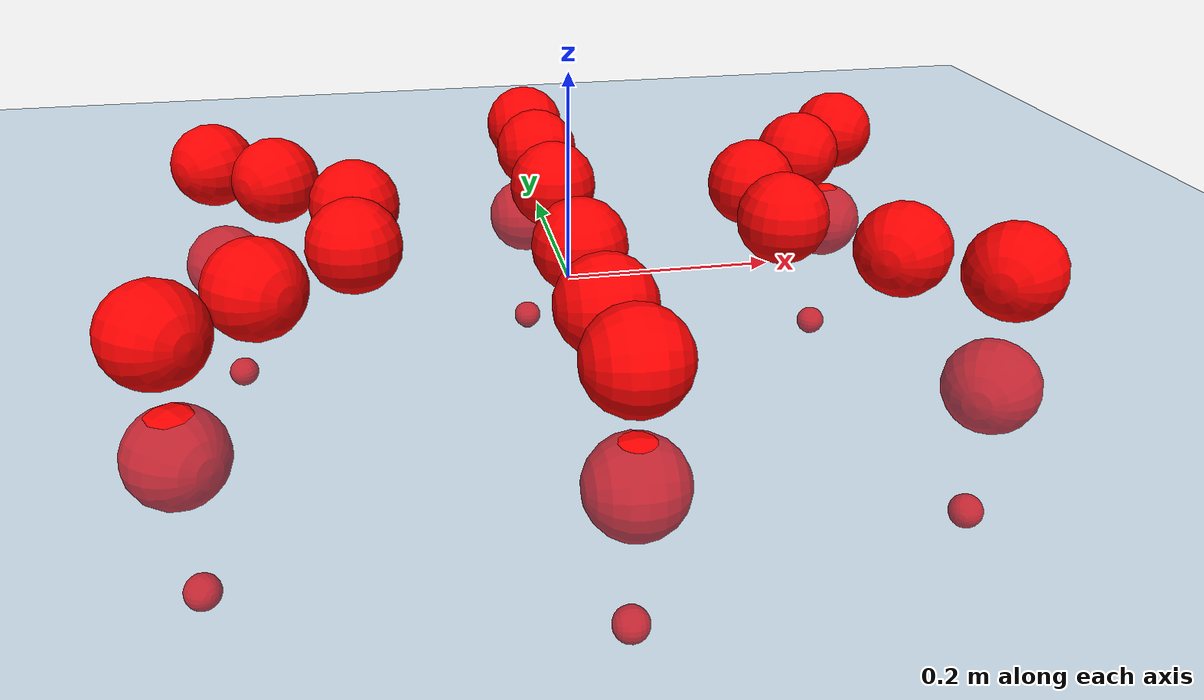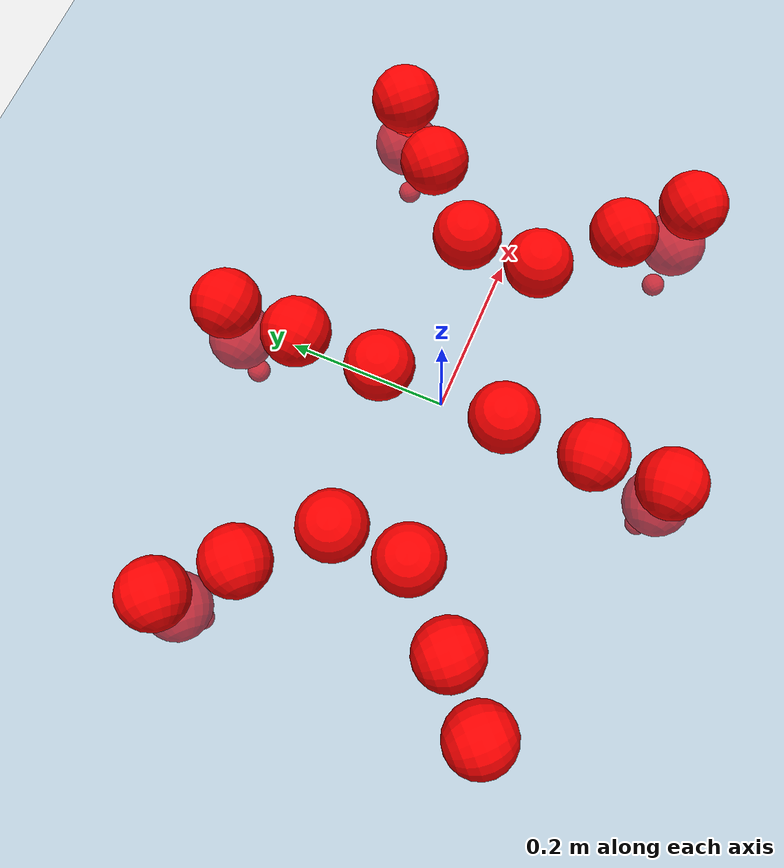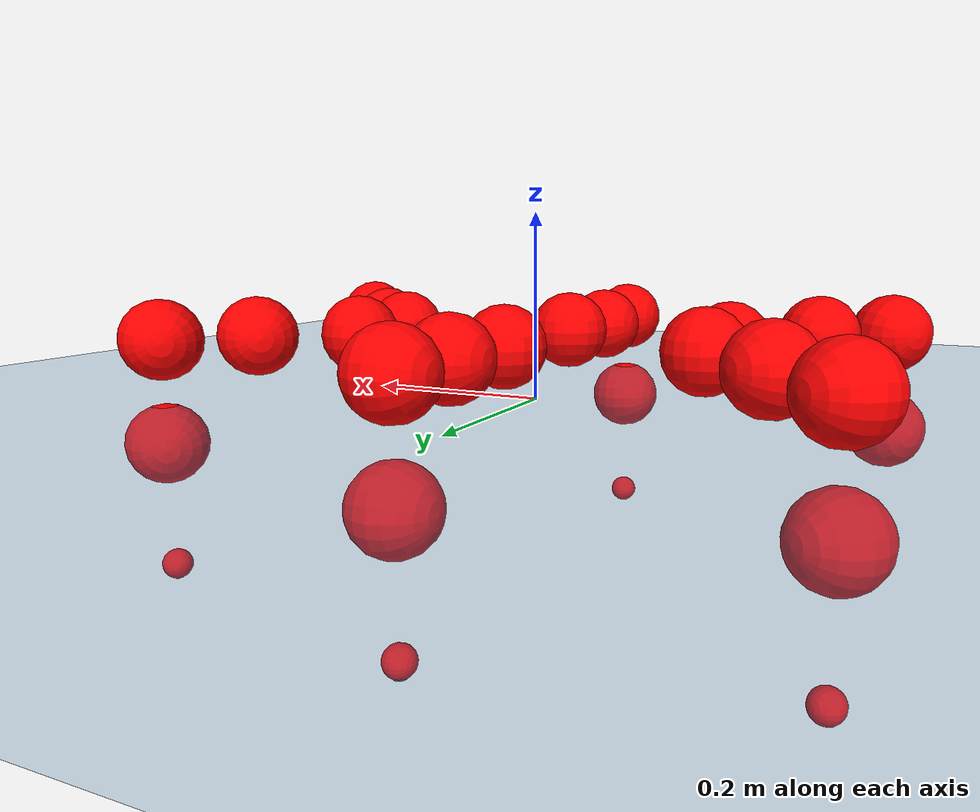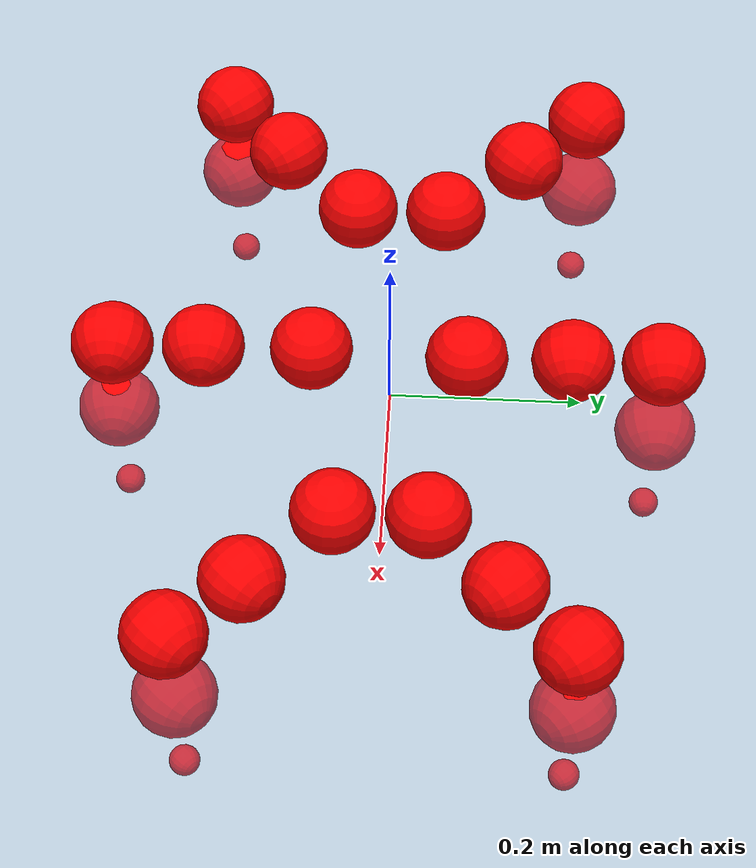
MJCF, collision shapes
<mujoco model="Golem">
  <compiler angle="radian" assetdir="assets" balanceinertia="true" inertiafromgeom="false"/>

  <option timestep="0.005" density="1.2" viscosity="2e-05"/>

  <size nkey="1"/>

  <visual>
    <quality shadowsize="8192"/>
    <map shadowclip="0.5"/>
  </visual>

  <default>
    <default class="/">
      <joint armature="0.01" damping="0.01" frictionloss="0.01"/>
      <geom contype="0" conaffinity="0" group="1" solref="-1000 -80"/>
      <site size="0.01 0.005 0.005" group="5"/>
      <general forcelimited="true" biastype="affine" gainprm="25" biasprm="0 -25 -0.5"/>
      <default class="visual">
        <geom type="mesh" group="2"/>
      </default>
      <default class="collision">
        <geom group="3"/>
      </default>
      <default class="foot">
        <geom size="0.01 0 0" condim="6" group="4" priority="1" solimp="0.015 1 0.01"/>
      </default>
      <default class="reward_collision_sphere">
        <geom group="5" rgba="1 0 0 1"/>
      </default>
    </default>
  </default>

  <asset>
    <texture type="skybox" colorspace="auto" name="//unnamed_texture_0" builtin="gradient" rgb1="0.95 0.95 0.95" rgb2="0.95 0.95 0.95" width="100" height="600"/>
    <texture type="2d" colorspace="auto" name="texplane" builtin="checker" rgb1="0.345 0.575 0.748" rgb2="0.345 0.575 0.748" markrgb="1 1 1" width="512" height="512"/>
    <material name="MatPlane" class="/" texture="texplane" texuniform="true" texrepeat="2 2" specular="0.9"/>
    <mesh name="body" class="/" file="body.stl" scale="0.001 0.001 0.001"/>
    <mesh name="coxa" class="/" file="coxa.stl" scale="0.001 0.001 0.001"/>
    <mesh name="femur" class="/" file="femur.stl" scale="0.001 0.001 0.001"/>
    <mesh name="tibia" class="/" file="tibia.stl" scale="0.001 0.001 0.001"/>
    <mesh name="tarsus" class="/" file="tarsus.stl" scale="0.001 0.001 0.001"/>
  </asset>

  <worldbody>
    <geom name="floor" class="/" size="100 100 0.125" type="plane" group="0" material="MatPlane"/>
    <light name="toplight_shadow" class="/" pos="0 0 5" dir="0.0990148 0.0990148 -0.990148" type="directional" ambient="0.04 0.04 0.04" diffuse="0.55 0.55 0.55" specular="0.12 0.12 0.12"/>
    <light name="toplight_fill" class="/" pos="0 0 5" dir="0.0990148 0.0990148 -0.990148" type="directional" castshadow="false" ambient="0.04 0.04 0.04" diffuse="0.3 0.3 0.3" specular="0.08 0.08 0.08"/>
    <body name="trunk" pos="-0.0017881 -6.39608e-06 -0.000750031" quat="1 -6.64366e-05 -0.000323853 0.000343606">
      <inertial pos="0.00125431 0.000638994 -0.00475243" quat="0.999909 0.0127889 0.00248616 0.0036311" mass="4.50912" diaginertia="0.0321818 0.00547884 0.0137242"/>
      <joint name="//unnamed_joint_0" type="free"/>
      <geom name="//unnamed_geom_1" class="/" pos="0 0 0.0682962" quat="1 0 0 0" type="mesh" rgba="0.9 0.9 0.9 1" mesh="body"/>
      <site name="imu" class="/" pos="0.165897 0.00290204 0.104247" size="0.010723"/>
      <camera name="track" class="/" pos="0 -1.77642 0" quat="0.707107 0.707107 0 0" mode="trackcom"/>
      <camera name="ego_camera" class="/" pos="0.164004 0 0.106713" quat="-0.5 -0.5 0.5 0.5"/>
      <body name="coxa_RR" pos="-0.224431 -0.0713794 0.0680336" quat="0.382895 0.000160936 0.000117491 -0.923792">
        <inertial pos="0.000408675 -0.000220305 0.000233711" quat="0.999971 -0.00116499 0.00537313 -0.00530697" mass="0.240318" diaginertia="0.0320965 0.00534259 0.0135019"/>
        <joint name="coxa_joint_RR" class="/" pos="0 0 0" axis="-0.000856856 -0.00182269 -0.999998" range="-3.1424 3.19326" armature="0.0104858" damping="0.0132555" frictionloss="0.0101348"/>
        <geom name="//unnamed_geom_2" class="/" type="mesh" rgba="0.2 0.2 0.2 1" mesh="coxa"/>
        <geom name="//unnamed_geom_3" class="reward_collision_sphere" size="0.0428921" pos="-0.0378472 0 0"/>
        <body name="femur_RR" pos="0.0747941 0.00221562 0.00279579" quat="0.500024 -0.499603 0.500096 0.500277">
          <inertial pos="6.5103e-05 0.00265694 0.0026235" quat="0.999986 -0.00496851 -0.0012128 0.00147023" mass="0.246569" diaginertia="0.0330177 0.00552857 0.0144031"/>
          <joint name="femur_joint_RR" class="/" pos="0 0 0" axis="-0.00202504 -0.00280065 -0.999994" range="-3.16053 3.13591" armature="0.01036" damping="0.0153555" frictionloss="0.0121346"/>
          <geom name="//unnamed_geom_4" class="/" type="mesh" rgba="0.9 0.9 0.9 1" mesh="femur"/>
          <geom name="//unnamed_geom_5" class="reward_collision_sphere" size="0.0428921"/>
          <body name="tibia_RR" pos="0.00074095 -0.0940145 -0.00243144" quat="-1.04742e-06 1 -2.28458e-06 -1.33714e-06">
            <inertial pos="0.000877823 -0.00220868 0.000908788" quat="0.999999 6.95189e-05 0.00140432 0.00026769" mass="0.246278" diaginertia="0.0319258 0.00553746 0.0137758"/>
            <joint name="tibia_joint_RR" class="/" pos="0 0 0" axis="4.38845e-06 -0.000391268 1" range="-3.13979 3.13552" armature="0.0104634" damping="0.0203691" frictionloss="0.00992747"/>
            <geom name="//unnamed_geom_6" class="/" type="mesh" rgba="0.2 0.2 0.2 1" mesh="tibia"/>
            <geom name="//unnamed_geom_7" class="reward_collision_sphere" size="0.0428921"/>
            <body name="tarsus_RR" pos="0.107994 0.000453616 0.00014072" quat="1 -9.69586e-05 0.000127726 2.84715e-05">
              <inertial pos="0.0747101 -0.000629627 -2.43226e-05" quat="0.500006 0.496635 0.4995 0.503833" mass="0.25388" diaginertia="0.033132 0.00561312 0.0137106"/>
              <joint name="tarsus_joint_RR" class="/" pos="0 0 0" axis="0.000606375 -0.000266978 1" range="-3.19287 3.19031" armature="0.010802" damping="0.00420836" frictionloss="0.0110157"/>
              <geom name="//unnamed_geom_8" class="/" type="mesh" rgba="0.9 0.9 0.9 1" mesh="tarsus"/>
              <geom name="foot_1" class="foot" size="0.0114178" pos="0.141296 0 0" quat="0 -0.707107 0 0.707107"/>
              <geom name="//unnamed_geom_10" class="reward_collision_sphere" size="0.0428921"/>
              <geom name="//unnamed_geom_11" class="reward_collision_sphere" size="0.0160845" pos="0.135619 0 0"/>
              <site name="foot_1" class="foot" pos="0.141296 0 0" quat="0 -0.707107 0 0.707107" size="0.010723"/>
            </body>
          </body>
        </body>
      </body>
      <body name="coxa_RM" pos="-0.00282567 -0.118954 0.0691093" quat="0.707177 8.19335e-05 -0.000110703 -0.707036">
        <inertial pos="0.00014657 -0.00114814 0.00104324" quat="0.999909 -0.00432975 -0.00772866 -0.0101504" mass="0.251412" diaginertia="0.032541 0.00552416 0.0141652"/>
        <joint name="coxa_joint_RM" class="/" pos="0 0 0" axis="0.00121616 0.00259204 -0.999996" range="-3.11865 3.12042" armature="0.0105792" damping="0.00639769" frictionloss="0.0110542"/>
        <geom name="//unnamed_geom_12" class="/" type="mesh" rgba="0.2 0.2 0.2 1" mesh="coxa"/>
        <geom name="//unnamed_geom_13" class="reward_collision_sphere" size="0.0428921" pos="-0.0378472 0 0"/>
        <body name="femur_RM" pos="0.0741461 -0.000509843 -0.00332972" quat="0.499306 -0.500837 0.500461 0.499393">
          <inertial pos="-0.00273285 -0.00120691 -0.00263515" quat="0.999998 -0.000380849 -0.000645369 -0.00198241" mass="0.254773" diaginertia="0.0322433 0.00554407 0.0139259"/>
          <joint name="femur_joint_RM" class="/" pos="0 0 0" axis="-0.00431333 -0.00229358 -0.999988" range="-3.1601 3.19324" armature="0.0106093" damping="0.0141911" frictionloss="0.00930443"/>
          <geom name="//unnamed_geom_14" class="/" type="mesh" rgba="0.9 0.9 0.9 1" mesh="femur"/>
          <geom name="//unnamed_geom_15" class="reward_collision_sphere" size="0.0428921"/>
          <body name="tibia_RM" pos="-0.00183262 -0.0941595 0.00242232" quat="0.000188838 1 -0.000160776 -0.000167911">
            <inertial pos="-0.00040515 -0.00126267 0.000147108" quat="1 0.000197807 -0.000393107 -0.000529471" mass="0.246162" diaginertia="0.0325988 0.00559262 0.013695"/>
            <joint name="tibia_joint_RM" class="/" pos="0 0 0" axis="-0.00788575 0.0102451 0.999916" stiffness="0.00083023" range="-3.14539 3.08737" armature="0.0113061" damping="0" frictionloss="0.0108676"/>
            <geom name="//unnamed_geom_16" class="/" type="mesh" rgba="0.2 0.2 0.2 1" mesh="tibia"/>
            <geom name="//unnamed_geom_17" class="reward_collision_sphere" size="0.0428921"/>
            <body name="tarsus_RM" pos="0.107606 0.00219212 -0.00240982" quat="1 0.000264414 -0.000345288 0.000138709">
              <inertial pos="0.0768684 0.000716766 0.00206895" quat="0.503152 0.491989 0.506416 0.498325" mass="0.245501" diaginertia="0.0323125 0.00549479 0.0132826"/>
              <joint name="tarsus_joint_RM" class="/" pos="0 0 0" axis="0.00181835 -0.00098397 0.999998" range="-3.19173 3.08442" armature="0.0107014" damping="0.00535255" frictionloss="0.0112652"/>
              <geom name="//unnamed_geom_18" class="/" type="mesh" rgba="0.9 0.9 0.9 1" mesh="tarsus"/>
              <geom name="foot_2" class="foot" size="0.0105368" pos="0.141296 0 0" quat="0 -0.707107 0 0.707107"/>
              <geom name="//unnamed_geom_20" class="reward_collision_sphere" size="0.0428921"/>
              <geom name="//unnamed_geom_21" class="reward_collision_sphere" size="0.0160845" pos="0.135619 0 0"/>
              <site name="foot_2" class="foot" pos="0.141296 0 0" quat="0 -0.707107 0 0.707107" size="0.010723"/>
            </body>
          </body>
        </body>
      </body>
      <body name="coxa_RF" pos="0.223246 -0.0732094 0.066681" quat="0.923781 0.000235939 -7.24274e-05 -0.38292">
        <inertial pos="-8.89128e-05 -0.0025384 -0.00079257" quat="0.999991 0.00239369 0.00320903 0.00121319" mass="0.253034" diaginertia="0.0326613 0.00553299 0.0138483"/>
        <joint name="coxa_joint_RF" class="/" pos="0 0 0" axis="0.000898741 0.00248786 -0.999997" range="-3.13811 3.17554" armature="0.0109205" damping="0" frictionloss="0.010735"/>
        <geom name="//unnamed_geom_22" class="/" type="mesh" rgba="0.2 0.2 0.2 1" mesh="coxa"/>
        <geom name="//unnamed_geom_23" class="reward_collision_sphere" size="0.0428921" pos="-0.0378472 0 0"/>
        <body name="femur_RF" pos="0.0772308 -0.000728509 -0.00267974" quat="0.500015 -0.499965 0.500052 0.499969">
          <inertial pos="-0.000810766 -0.000164537 0.0024435" quat="0.999989 0.000371933 0.000562505 -0.00456135" mass="0.242847" diaginertia="0.0321855 0.00540677 0.0139099"/>
          <joint name="femur_joint_RF" class="/" pos="0 0 0" axis="-0.00075892 -0.00181952 -0.999998" range="-3.08593 3.11761" armature="0.0104754" damping="0.011594" frictionloss="0.00959789"/>
          <geom name="//unnamed_geom_24" class="/" type="mesh" rgba="0.9 0.9 0.9 1" mesh="femur"/>
          <geom name="//unnamed_geom_25" class="reward_collision_sphere" size="0.0428921"/>
          <body name="tibia_RF" pos="-0.00318942 -0.0950448 4.20072e-05" quat="-0.00016534 1 -7.83573e-05 0.000103825">
            <inertial pos="0.00199843 -0.000455588 -2.76812e-06" quat="0.999909 -0.00368457 0.0113793 -0.00618488" mass="0.251414" diaginertia="0.0313008 0.00545266 0.0139369"/>
            <joint name="tibia_joint_RF" class="/" pos="0 0 0" axis="0.00468232 0.00832485 0.999954" range="-3.1398 3.13835" armature="0.0101765" damping="0.0050147" frictionloss="0.0107163"/>
            <geom name="//unnamed_geom_26" class="/" type="mesh" rgba="0.2 0.2 0.2 1" mesh="tibia"/>
            <geom name="//unnamed_geom_27" class="reward_collision_sphere" size="0.0428921"/>
            <body name="tarsus_RF" pos="0.112379 -0.000947434 -0.00221399" quat="1 -6.5048e-05 -0.000165298 -0.000514404">
              <inertial pos="0.076142 -0.00250943 -0.000288944" quat="0.501662 0.501624 0.497849 0.498854" mass="0.237914" diaginertia="0.0317759 0.00535355 0.0139421"/>
              <joint name="tarsus_joint_RF" class="/" pos="0 0 0" axis="-0.00808281 0.0115558 0.999901" range="-3.18416 3.13693" armature="0.0107787" damping="0.0194047" frictionloss="0.0111643"/>
              <geom name="//unnamed_geom_28" class="/" type="mesh" rgba="0.9 0.9 0.9 1" mesh="tarsus"/>
              <geom name="foot_3" class="foot" size="0.0103133" pos="0.141296 0 0" quat="0 -0.707107 0 0.707107"/>
              <geom name="//unnamed_geom_30" class="reward_collision_sphere" size="0.0428921"/>
              <geom name="//unnamed_geom_31" class="reward_collision_sphere" size="0.0160845" pos="0.135619 0 0"/>
              <site name="foot_3" class="foot" pos="0.141296 0 0" quat="0 -0.707107 0 0.707107" size="0.010723"/>
            </body>
          </body>
        </body>
      </body>
      <body name="coxa_LR" pos="-0.223488 0.0767946 0.0703834" quat="0.38265 -1.70318e-05 -8.38287e-05 0.923893">
        <inertial pos="0.000975873 0.00064567 0.00294227" quat="0.999999 -0.000571047 -0.000719674 0.000421149" mass="0.24779" diaginertia="0.0316445 0.00548288 0.0132816"/>
        <joint name="coxa_joint_LR" class="/" pos="0 0 0" axis="-0.00274392 0.00105527 -0.999996" range="-3.14814 3.1271" armature="0.0107224" damping="0" frictionloss="0.00927135"/>
        <geom name="//unnamed_geom_32" class="/" type="mesh" rgba="0.2 0.2 0.2 1" mesh="coxa"/>
        <geom name="//unnamed_geom_33" class="reward_collision_sphere" size="0.0428921" pos="-0.0378472 0 0"/>
        <body name="femur_LR" pos="0.0759913 -0.00335134 -0.00030405" quat="0.49985 -0.499668 0.500283 0.500199">
          <inertial pos="0.00258888 -0.000395624 0.00191399" quat="0.999998 -0.00152409 0.000511722 -0.00154385" mass="0.237632" diaginertia="0.0317383 0.00548946 0.0138592"/>
          <joint name="femur_joint_LR" class="/" pos="0 0 0" axis="0.00252695 0.00110778 0.999996" range="-3.19351 3.08528" armature="0.00929884" damping="0" frictionloss="0.0109459"/>
          <geom name="//unnamed_geom_34" class="/" type="mesh" rgba="0.9 0.9 0.9 1" mesh="femur"/>
          <geom name="//unnamed_geom_35" class="reward_collision_sphere" size="0.0428921"/>
          <body name="tibia_LR" pos="0.00285989 -0.0968944 -0.000535477" quat="0.000217303 1 0.000233695 -0.000145744">
            <inertial pos="0.000614874 -0.00239855 0.000314356" quat="0.999999 -0.00138255 0.000351263 0.000825727" mass="0.251945" diaginertia="0.031318 0.00566198 0.0134837"/>
            <joint name="tibia_joint_LR" class="/" pos="0 0 0" axis="-0.0139042 0.000482616 -0.999903" range="-3.15646 3.08864" armature="0.0110056" damping="0.00289908" frictionloss="0.0107466"/>
            <geom name="//unnamed_geom_36" class="/" type="mesh" rgba="0.2 0.2 0.2 1" mesh="tibia"/>
            <geom name="//unnamed_geom_37" class="reward_collision_sphere" size="0.0428921"/>
            <body name="tarsus_LR" pos="0.114326 -0.000137718 -0.00144618" quat="0.999999 0.000694545 0.000634754 -0.00101336">
              <inertial pos="0.0739715 -0.00204949 0.000928951" quat="0.500107 0.499899 0.499978 0.500016" mass="0.248498" diaginertia="0.0320589 0.00536389 0.0140758"/>
              <joint name="tarsus_joint_LR" class="/" pos="0 0 0" axis="-1.68947e-05 1.82606e-05 -1" range="-3.14945 3.14868" armature="0.0107293" damping="0.0273378" frictionloss="0.0121389"/>
              <geom name="//unnamed_geom_38" class="/" type="mesh" rgba="0.9 0.9 0.9 1" mesh="tarsus"/>
              <geom name="foot_4" class="foot" size="0.0107676" pos="0.141296 0 0" quat="0.707107 0 -0.707107 0"/>
              <geom name="//unnamed_geom_40" class="reward_collision_sphere" size="0.0428921"/>
              <geom name="//unnamed_geom_41" class="reward_collision_sphere" size="0.0160845" pos="0.135619 0 0"/>
              <site name="foot_4" class="foot" pos="0.141296 0 0" quat="0.707107 0 -0.707107 0" size="0.010723"/>
            </body>
          </body>
        </body>
      </body>
      <body name="coxa_LM" pos="-0.000198352 0.116888 0.0676881" quat="0.706927 5.373e-05 0.000489841 0.707286">
        <inertial pos="0.00289235 3.97275e-05 0.000107414" quat="0.999997 -0.00163409 0.000767779 -0.00134564" mass="0.238385" diaginertia="0.0319215 0.00535462 0.0135573"/>
        <joint name="coxa_joint_LM" class="/" pos="0 0 0" axis="0.0006713 0.00150828 -0.999999" range="-3.14944 3.13725" armature="0.0110629" damping="0" frictionloss="0.0100047"/>
        <geom name="//unnamed_geom_42" class="/" type="mesh" rgba="0.2 0.2 0.2 1" mesh="coxa"/>
        <geom name="//unnamed_geom_43" class="reward_collision_sphere" size="0.0428921" pos="-0.0378472 0 0"/>
        <body name="femur_LM" pos="0.0710114 0.000210936 0.00148847" quat="0.499929 -0.500076 0.499918 0.500077">
          <inertial pos="0.00146907 -0.000618169 -0.000964905" quat="0.999994 0.000495299 0.00307914 0.00142302" mass="0.253708" diaginertia="0.0316402 0.00565706 0.0146096"/>
          <joint name="femur_joint_LM" class="/" pos="0 0 0" axis="-0.000757491 -0.0153621 0.999882" range="-3.0862 3.1306" armature="0.0113929" damping="0.00223885" frictionloss="0.0107499"/>
          <geom name="//unnamed_geom_44" class="/" type="mesh" rgba="0.9 0.9 0.9 1" mesh="femur"/>
          <geom name="//unnamed_geom_45" class="reward_collision_sphere" size="0.0428921"/>
          <body name="tibia_LM" pos="-0.000457284 -0.0927516 -0.000212257" quat="-0.000116497 1 7.9228e-05 -9.8473e-05">
            <inertial pos="-0.00267244 0.000325392 -5.69031e-05" quat="0.999994 0.00258075 0.000206898 -0.00214575" mass="0.244035" diaginertia="0.0321498 0.00557917 0.0140739"/>
            <joint name="tibia_joint_LM" class="/" pos="0 0 0" axis="0.000294367 -3.41734e-05 -1" stiffness="0.00669602" range="-3.15823 3.13231" armature="0.00971042" damping="0.00622447" frictionloss="0.00936042"/>
            <geom name="//unnamed_geom_46" class="/" type="mesh" rgba="0.2 0.2 0.2 1" mesh="tibia"/>
            <geom name="//unnamed_geom_47" class="reward_collision_sphere" size="0.0428921"/>
            <body name="tarsus_LM" pos="0.114393 0.00161812 -3.66505e-05" quat="1 -2.47352e-06 0.00028099 2.80617e-05">
              <inertial pos="0.0735589 6.893e-05 -0.00143538" quat="0.48965 0.50634 0.503385 0.500466" mass="0.243704" diaginertia="0.0310833 0.00552789 0.0135012"/>
              <joint name="tarsus_joint_LM" class="/" pos="0 0 0" axis="-0.00505972 -0.00785924 -0.999956" stiffness="0.00254702" range="-3.09629 3.13878" armature="0.0103749" damping="0.0148884" frictionloss="0.0106159"/>
              <geom name="//unnamed_geom_48" class="/" type="mesh" rgba="0.9 0.9 0.9 1" mesh="tarsus"/>
              <geom name="foot_5" class="foot" size="0.0118179" pos="0.141296 0 0" quat="0.707107 0 -0.707107 0"/>
              <geom name="//unnamed_geom_50" class="reward_collision_sphere" size="0.0428921"/>
              <geom name="//unnamed_geom_51" class="reward_collision_sphere" size="0.0160845" pos="0.135619 0 0"/>
              <site name="foot_5" class="foot" pos="0.141296 0 0" quat="0.707107 0 -0.707107 0" size="0.010723"/>
            </body>
          </body>
        </body>
      </body>
      <body name="coxa_LF" pos="0.22374 0.0745992 0.0678034" quat="0.923884 1.59412e-05 3.10156e-05 0.382673">
        <inertial pos="0.000167941 -0.00253521 0.000271053" quat="0.999913 0.00387837 0.0110565 0.00606266" mass="0.251843" diaginertia="0.0327732 0.00578462 0.0144747"/>
        <joint name="coxa_joint_LF" class="/" pos="0 0 0" axis="0.00202311 -0.000852628 -0.999998" range="-3.09785 3.14029" armature="0.0111698" damping="0.01271" frictionloss="0.00940299"/>
        <geom name="//unnamed_geom_52" class="/" type="mesh" rgba="0.2 0.2 0.2 1" mesh="coxa"/>
        <geom name="//unnamed_geom_53" class="reward_collision_sphere" size="0.0428921" pos="-0.0378472 0 0"/>
        <body name="femur_LF" pos="0.0720438 -0.000804166 0.00188623" quat="0.499728 -0.499833 0.50033 0.500109">
          <inertial pos="6.69322e-05 0.00141993 -0.00259185" quat="0.999986 -0.00157404 -0.00424764 -0.00255487" mass="0.250345" diaginertia="0.0322417 0.00563171 0.0136615"/>
          <joint name="femur_joint_LF" class="/" pos="0 0 0" axis="0.00133425 -0.0028628 0.999995" range="-3.11906 3.13812" armature="0.0116256" damping="0.00288769" frictionloss="0.0106892"/>
          <geom name="//unnamed_geom_54" class="/" type="mesh" rgba="0.9 0.9 0.9 1" mesh="femur"/>
          <geom name="//unnamed_geom_55" class="reward_collision_sphere" size="0.0428921"/>
          <body name="tibia_LF" pos="0.000190303 -0.0973658 0.000797882" quat="0.000118678 1 0.000119045 -0.000252965">
            <inertial pos="0.0026371 0.00281629 0.00257313" quat="0.999996 -0.00278902 -0.000856284 -7.52663e-05" mass="0.248423" diaginertia="0.0322516 0.00567264 0.0143933"/>
            <joint name="tibia_joint_LF" class="/" pos="0 0 0" axis="0.00126753 -0.000219204 -0.999999" stiffness="0.00410656" range="-3.10361 3.08497" armature="0.0113006" damping="0.00506646" frictionloss="0.00989186"/>
            <geom name="//unnamed_geom_56" class="/" type="mesh" rgba="0.2 0.2 0.2 1" mesh="tibia"/>
            <geom name="//unnamed_geom_57" class="reward_collision_sphere" size="0.0428921"/>
            <body name="tarsus_LF" pos="0.110145 0.00160788 -0.000834726" quat="1 -1.70533e-05 -3.76611e-06 1.17192e-05">
              <inertial pos="0.074531 0.00108658 0.00262006" quat="0.493171 0.499162 0.509853 0.497664" mass="0.249363" diaginertia="0.0332431 0.00554308 0.0143917"/>
              <joint name="tarsus_joint_LF" class="/" pos="0 0 0" axis="-0.00178799 -0.00174458 -0.999997" stiffness="0.00280451" range="-3.18987 3.08442" armature="0.0113183" damping="0.0160017" frictionloss="0.0112886"/>
              <geom name="//unnamed_geom_58" class="/" type="mesh" rgba="0.9 0.9 0.9 1" mesh="tarsus"/>
              <geom name="foot_6" class="foot" size="0.0112733" pos="0.141296 0 0" quat="0.707107 0 -0.707107 0"/>
              <geom name="//unnamed_geom_60" class="reward_collision_sphere" size="0.0428921"/>
              <geom name="//unnamed_geom_61" class="reward_collision_sphere" size="0.0160845" pos="0.135619 0 0"/>
              <site name="foot_6" class="foot" pos="0.141296 0 0" quat="0.707107 0 -0.707107 0" size="0.010723"/>
            </body>
          </body>
        </body>
      </body>
    </body>
  </worldbody>

  <contact>
    <pair class="/" geom1="floor" geom2="foot_1" name="//unnamed_contact_0"/>
    <pair class="/" geom1="floor" geom2="foot_2" name="//unnamed_contact_1"/>
    <pair class="/" geom1="floor" geom2="foot_3" name="//unnamed_contact_2"/>
    <pair class="/" geom1="floor" geom2="foot_4" name="//unnamed_contact_3"/>
    <pair class="/" geom1="floor" geom2="foot_5" name="//unnamed_contact_4"/>
    <pair class="/" geom1="floor" geom2="foot_6" name="//unnamed_contact_5"/>
  </contact>

  <actuator>
    <general name="coxa_joint_RR" class="/" joint="coxa_joint_RR" forcerange="-8.14119 8.14119" gainprm="27.4225" biasprm="0 -27.4225 -0.568154"/>
    <general name="femur_joint_RR" class="/" joint="femur_joint_RR" forcerange="-7.89544 7.89544" gainprm="27.4225" biasprm="0 -27.4225 -0.568154"/>
    <general name="tibia_joint_RR" class="/" joint="tibia_joint_RR" forcerange="-7.78997 7.78997" gainprm="27.4225" biasprm="0 -27.4225 -0.568154"/>
    <general name="tarsus_joint_RR" class="/" joint="tarsus_joint_RR" forcerange="-7.8103 7.8103" gainprm="27.4225" biasprm="0 -27.4225 -0.568154"/>
    <general name="coxa_joint_RM" class="/" joint="coxa_joint_RM" forcerange="-7.82337 7.82337" gainprm="27.4225" biasprm="0 -27.4225 -0.568154"/>
    <general name="femur_joint_RM" class="/" joint="femur_joint_RM" forcerange="-7.90033 7.90033" gainprm="27.4225" biasprm="0 -27.4225 -0.568154"/>
    <general name="tibia_joint_RM" class="/" joint="tibia_joint_RM" forcerange="-7.78415 7.78415" gainprm="27.4225" biasprm="0 -27.4225 -0.568154"/>
    <general name="tarsus_joint_RM" class="/" joint="tarsus_joint_RM" forcerange="-7.19055 7.19055" gainprm="27.4225" biasprm="0 -27.4225 -0.568154"/>
    <general name="coxa_joint_RF" class="/" joint="coxa_joint_RF" forcerange="-7.78997 7.78997" gainprm="27.4225" biasprm="0 -27.4225 -0.568154"/>
    <general name="femur_joint_RF" class="/" joint="femur_joint_RF" forcerange="-7.79326 7.79326" gainprm="27.4225" biasprm="0 -27.4225 -0.568154"/>
    <general name="tibia_joint_RF" class="/" joint="tibia_joint_RF" forcerange="-7.85892 7.85892" gainprm="27.4225" biasprm="0 -27.4225 -0.568154"/>
    <general name="tarsus_joint_RF" class="/" joint="tarsus_joint_RF" forcerange="-8.1241 8.1241" gainprm="27.4225" biasprm="0 -27.4225 -0.568154"/>
    <general name="coxa_joint_LR" class="/" joint="coxa_joint_LR" forcerange="-7.97787 7.97787" gainprm="27.4225" biasprm="0 -27.4225 -0.568154"/>
    <general name="femur_joint_LR" class="/" joint="femur_joint_LR" forcerange="-7.08231 7.08231" gainprm="27.4225" biasprm="0 -27.4225 -0.568154"/>
    <general name="tibia_joint_LR" class="/" joint="tibia_joint_LR" forcerange="-7.56669 7.56669" gainprm="27.4225" biasprm="0 -27.4225 -0.568154"/>
    <general name="tarsus_joint_LR" class="/" joint="tarsus_joint_LR" forcerange="-7.78997 7.78997" gainprm="27.4225" biasprm="0 -27.4225 -0.568154"/>
    <general name="coxa_joint_LM" class="/" joint="coxa_joint_LM" forcerange="-7.71071 7.71071" gainprm="27.4225" biasprm="0 -27.4225 -0.568154"/>
    <general name="femur_joint_LM" class="/" joint="femur_joint_LM" forcerange="-7.68315 7.68315" gainprm="27.4225" biasprm="0 -27.4225 -0.568154"/>
    <general name="tibia_joint_LM" class="/" joint="tibia_joint_LM" forcerange="-7.85254 7.85254" gainprm="27.4225" biasprm="0 -27.4225 -0.568154"/>
    <general name="tarsus_joint_LM" class="/" joint="tarsus_joint_LM" forcerange="-8.17347 8.17347" gainprm="27.4225" biasprm="0 -27.4225 -0.568154"/>
    <general name="coxa_joint_LF" class="/" joint="coxa_joint_LF" forcerange="-8.04753 8.04753" gainprm="27.4225" biasprm="0 -27.4225 -0.568154"/>
    <general name="femur_joint_LF" class="/" joint="femur_joint_LF" forcerange="-8.42455 8.42455" gainprm="27.4225" biasprm="0 -27.4225 -0.568154"/>
    <general name="tibia_joint_LF" class="/" joint="tibia_joint_LF" forcerange="-7.84704 7.84704" gainprm="27.4225" biasprm="0 -27.4225 -0.568154"/>
    <general name="tarsus_joint_LF" class="/" joint="tarsus_joint_LF" forcerange="-7.07496 7.07496" gainprm="27.4225" biasprm="0 -27.4225 -0.568154"/>
  </actuator>

  <sensor>
    <gyro site="imu" name="imu_angular_velocity"/>
    <velocimeter site="imu" name="imu_linear_velocity"/>
    <framelinvel objtype="site" objname="foot_1" name="foot_1_global_linear_velocity"/>
    <framelinvel objtype="site" objname="foot_2" name="foot_2_global_linear_velocity"/>
    <framelinvel objtype="site" objname="foot_3" name="foot_3_global_linear_velocity"/>
    <framelinvel objtype="site" objname="foot_4" name="foot_4_global_linear_velocity"/>
    <framelinvel objtype="site" objname="foot_5" name="foot_5_global_linear_velocity"/>
    <framelinvel objtype="site" objname="foot_6" name="foot_6_global_linear_velocity"/>
  </sensor>

  <keyframe>
    <key name="home" qpos="0 0 0.1457 1 0 0 0 0 0 0 0 0 0 0 0 0 0 0 0 0 0 0 0 0 0 0 0 0 0 0 0"/>
  </keyframe>
</mujoco>
